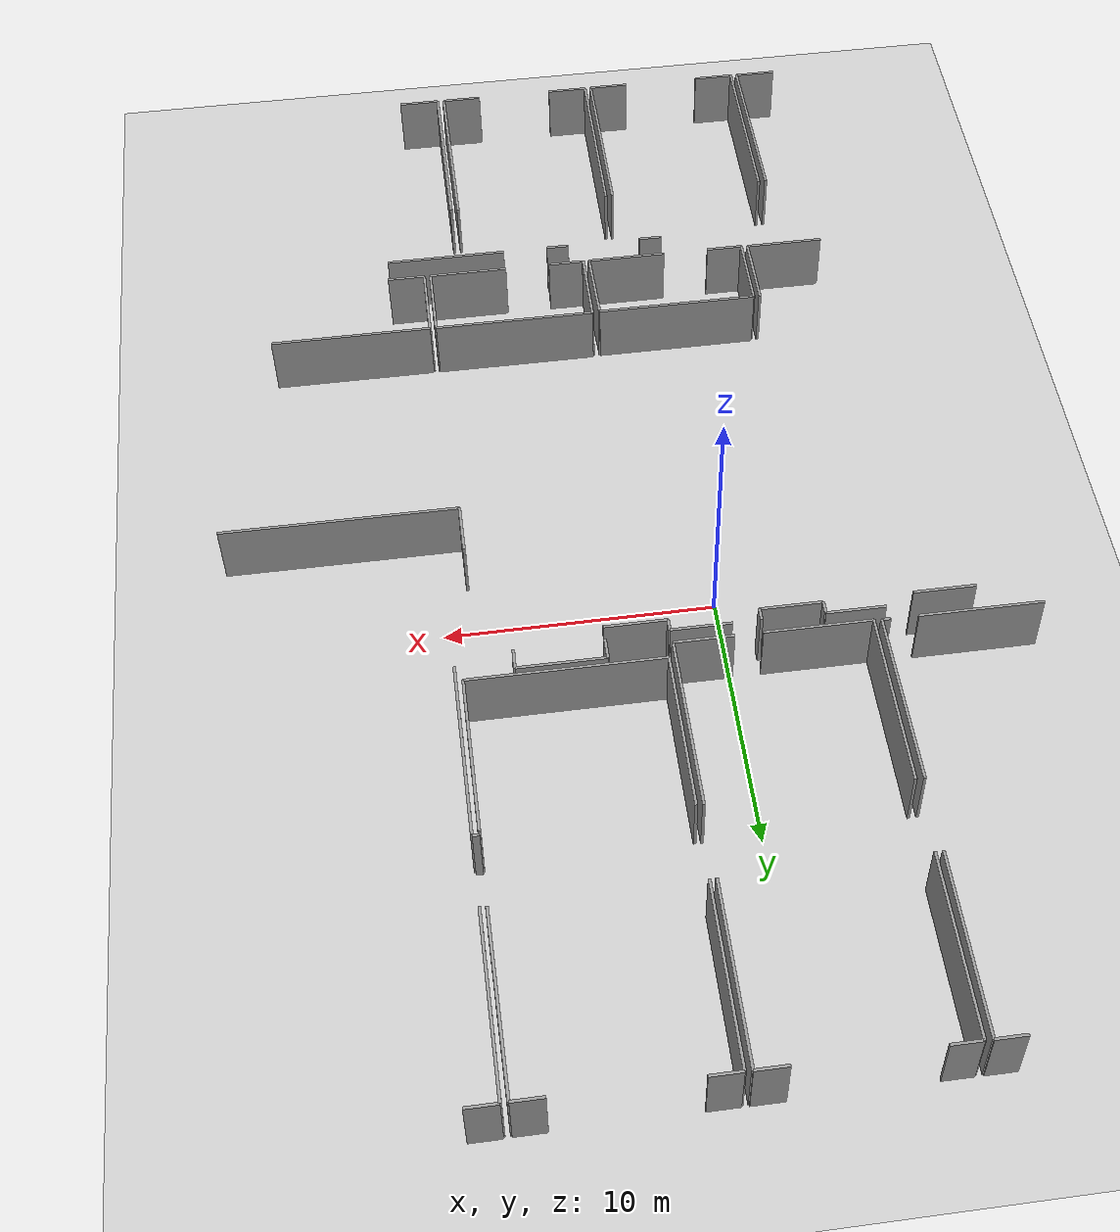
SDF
<sdf version="1.6">
 <world name="default">
  <model name="ground_plane">
   <static>1</static>
   <link name="link">
    <collision name="collision">
     <geometry><plane><normal>0 0 1</normal><size>100 100</size></plane></geometry>
     <surface><friction><ode><mu>100</mu><mu2>50</mu2></ode></friction></surface>
    </collision>
    <visual name="visual">
     <cast_shadows>0</cast_shadows>
     <geometry><plane><normal>0 0 1</normal><size>100 100</size></plane></geometry>
     <material>
      <script><uri>file://media/materials/scripts/gazebo.material</uri><name>Gazebo/Grey</name></script>
     </material>
    </visual>
   </link>
  </model>
  <model name="50045233">
   <static>1</static>
   <link name="Wall_22">
    <collision name="Wall_22_Collision">
     <geometry><box><size>0.252276260271 0.1 2.5</size></box></geometry>
     <pose>0.126138130135 0 1.25 0 0 0</pose>
    </collision>
    <visual name="Wall_22_Visual">
     <pose>0.126138130135 0 1.25 0 0 0</pose>
     <geometry><box><size>0.252276260271 0.1 2.5</size></box></geometry>
     <material>
      <script><uri>file://media/materials/scripts/gazebo.material</uri><name>Gazebo/Grey</name></script>
      <ambient>1 1 1 1</ambient>
     </material>
    </visual>
    <pose>56.4897052758 -9.31607499762 0 0 0 3.14159265359</pose>
   </link>
   <link name="Wall_23">
    <collision name="Wall_23_Collision">
     <geometry><box><size>0.0649725579772 0.1 2.5</size></box></geometry>
     <pose>0.0324862789886 0 1.25 0 0 0</pose>
    </collision>
    <visual name="Wall_23_Visual">
     <pose>0.0324862789886 0 1.25 0 0 0</pose>
     <geometry><box><size>0.0649725579772 0.1 2.5</size></box></geometry>
     <material>
      <script><uri>file://media/materials/scripts/gazebo.material</uri><name>Gazebo/Grey</name></script>
      <ambient>1 1 1 1</ambient>
     </material>
    </visual>
    <pose>56.2374290156 -9.31607499762 0 0 0 -1.57079632679</pose>
   </link>
   <link name="Wall_42">
    <collision name="Wall_42_Collision">
     <geometry><box><size>1.11735033787 0.1 2.5</size></box></geometry>
     <pose>0.558675168935 0 1.25 0 0 0</pose>
    </collision>
    <visual name="Wall_42_Visual">
     <pose>0.558675168935 0 1.25 0 0 0</pose>
     <geometry><box><size>1.11735033787 0.1 2.5</size></box></geometry>
     <material>
      <script><uri>file://media/materials/scripts/gazebo.material</uri><name>Gazebo/Grey</name></script>
      <ambient>1 1 1 1</ambient>
     </material>
    </visual>
    <pose>40.2318454364 -0.0157355413851 0 0 0 0.0</pose>
   </link>
   <link name="Wall_43">
    <collision name="Wall_43_Collision">
     <geometry><box><size>6.6601948343 0.1 2.5</size></box></geometry>
     <pose>3.33009741715 0 1.25 0 0 0</pose>
    </collision>
    <visual name="Wall_43_Visual">
     <pose>3.33009741715 0 1.25 0 0 0</pose>
     <geometry><box><size>6.6601948343 0.1 2.5</size></box></geometry>
     <material>
      <script><uri>file://media/materials/scripts/gazebo.material</uri><name>Gazebo/Grey</name></script>
      <ambient>1 1 1 1</ambient>
     </material>
    </visual>
    <pose>41.3491957742 -0.0157355413851 0 0 0 -1.57091064735</pose>
   </link>
   <link name="Wall_44">
    <collision name="Wall_44_Collision">
     <geometry><box><size>6.65461121157 0.1 2.5</size></box></geometry>
     <pose>3.32730560579 0 1.25 0 0 0</pose>
    </collision>
    <visual name="Wall_44_Visual">
     <pose>3.32730560579 0 1.25 0 0 0</pose>
     <geometry><box><size>6.65461121157 0.1 2.5</size></box></geometry>
     <material>
      <script><uri>file://media/materials/scripts/gazebo.material</uri><name>Gazebo/Grey</name></script>
      <ambient>1 1 1 1</ambient>
     </material>
    </visual>
    <pose>41.6330700168 -6.67618413121 0 0 0 1.57079632679</pose>
   </link>
   <link name="Wall_45">
    <collision name="Wall_45_Collision">
     <geometry><box><size>1.10275689223 0.1 2.5</size></box></geometry>
     <pose>0.551378446115 0 1.25 0 0 0</pose>
    </collision>
    <visual name="Wall_45_Visual">
     <pose>0.551378446115 0 1.25 0 0 0</pose>
     <geometry><box><size>1.10275689223 0.1 2.5</size></box></geometry>
     <material>
      <script><uri>file://media/materials/scripts/gazebo.material</uri><name>Gazebo/Grey</name></script>
      <ambient>1 1 1 1</ambient>
     </material>
    </visual>
    <pose>41.6330700168 -0.0215729196409 0 0 0 0.0</pose>
   </link>
   <link name="Wall_46">
    <collision name="Wall_46_Collision">
     <geometry><box><size>1.16316106723 0.1 2.5</size></box></geometry>
     <pose>0.581580533613 0 1.25 0 0 0</pose>
    </collision>
    <visual name="Wall_46_Visual">
     <pose>0.581580533613 0 1.25 0 0 0</pose>
     <geometry><box><size>1.16316106723 0.1 2.5</size></box></geometry>
     <material>
      <script><uri>file://media/materials/scripts/gazebo.material</uri><name>Gazebo/Grey</name></script>
      <ambient>1 1 1 1</ambient>
     </material>
    </visual>
    <pose>47.6459503188 -0.0215729196409 0 0 0 0.0</pose>
   </link>
   <link name="Wall_47">
    <collision name="Wall_47_Collision">
     <geometry><box><size>6.6546139993 0.1 2.5</size></box></geometry>
     <pose>3.32730699965 0 1.25 0 0 0</pose>
    </collision>
    <visual name="Wall_47_Visual">
     <pose>3.32730699965 0 1.25 0 0 0</pose>
     <geometry><box><size>6.6546139993 0.1 2.5</size></box></geometry>
     <material>
      <script><uri>file://media/materials/scripts/gazebo.material</uri><name>Gazebo/Grey</name></script>
      <ambient>1 1 1 1</ambient>
     </material>
    </visual>
    <pose>48.8091113861 -0.0215729196409 0 0 0 -1.56988099524</pose>
   </link>
   <link name="Wall_48">
    <collision name="Wall_48_Collision">
     <geometry><box><size>6.63468798579 0.1 2.5</size></box></geometry>
     <pose>3.31734399289 0 1.25 0 0 0</pose>
    </collision>
    <visual name="Wall_48_Visual">
     <pose>3.31734399289 0 1.25 0 0 0</pose>
     <geometry><box><size>6.63468798579 0.1 2.5</size></box></geometry>
     <material>
      <script><uri>file://media/materials/scripts/gazebo.material</uri><name>Gazebo/Grey</name></script>
      <ambient>1 1 1 1</ambient>
     </material>
    </visual>
    <pose>49.0613876463 -6.6617175851 0 0 0 1.57079632679</pose>
   </link>
   <link name="Wall_49">
    <collision name="Wall_49_Collision">
     <geometry><box><size>1.13016719013 0.1 2.5</size></box></geometry>
     <pose>0.565083595064 0 1.25 0 0 0</pose>
    </collision>
    <visual name="Wall_49_Visual">
     <pose>0.565083595064 0 1.25 0 0 0</pose>
     <geometry><box><size>1.13016719013 0.1 2.5</size></box></geometry>
     <material>
      <script><uri>file://media/materials/scripts/gazebo.material</uri><name>Gazebo/Grey</name></script>
      <ambient>1 1 1 1</ambient>
     </material>
    </visual>
    <pose>49.0613876463 -0.0270295993147 0 0 0 0.0</pose>
   </link>
   <link name="Wall_50">
    <collision name="Wall_50_Collision">
     <geometry><box><size>1.13016719013 0.1 2.5</size></box></geometry>
     <pose>0.565083595064 0 1.25 0 0 0</pose>
    </collision>
    <visual name="Wall_50_Visual">
     <pose>0.565083595064 0 1.25 0 0 0</pose>
     <geometry><box><size>1.13016719013 0.1 2.5</size></box></geometry>
     <material>
      <script><uri>file://media/materials/scripts/gazebo.material</uri><name>Gazebo/Grey</name></script>
      <ambient>1 1 1 1</ambient>
     </material>
    </visual>
    <pose>55.1018051458 -0.0270295993147 0 0 0 0.0</pose>
   </link>
   <link name="Wall_51">
    <collision name="Wall_51_Collision">
     <geometry><box><size>6.63471828161 0.1 2.5</size></box></geometry>
     <pose>3.3173591408 0 1.25 0 0 0</pose>
    </collision>
    <visual name="Wall_51_Visual">
     <pose>3.3173591408 0 1.25 0 0 0</pose>
     <geometry><box><size>6.63471828161 0.1 2.5</size></box></geometry>
     <material>
      <script><uri>file://media/materials/scripts/gazebo.material</uri><name>Gazebo/Grey</name></script>
      <ambient>1 1 1 1</ambient>
     </material>
    </visual>
    <pose>56.2319723359 -0.0270295993147 0 0 0 -1.56777432119</pose>
   </link>
   <link name="Wall_54">
    <collision name="Wall_54_Collision">
     <geometry><box><size>1.13181688398 0.1 2.5</size></box></geometry>
     <pose>0.565908441991 0 1.25 0 0 0</pose>
    </collision>
    <visual name="Wall_54_Visual">
     <pose>0.565908441991 0 1.25 0 0 0</pose>
     <geometry><box><size>1.13181688398 0.1 2.5</size></box></geometry>
     <material>
      <script><uri>file://media/materials/scripts/gazebo.material</uri><name>Gazebo/Grey</name></script>
      <ambient>1 1 1 1</ambient>
     </material>
    </visual>
    <pose>57.6232987532 -0.0114209574569 0 0 0 3.14159265359</pose>
   </link>
   <link name="Wall_55">
    <collision name="Wall_55_Collision">
     <geometry><box><size>6.67275794172 0.1 2.5</size></box></geometry>
     <pose>3.33637897086 0 1.25 0 0 0</pose>
    </collision>
    <visual name="Wall_55_Visual">
     <pose>3.33637897086 0 1.25 0 0 0</pose>
     <geometry><box><size>6.67275794172 0.1 2.5</size></box></geometry>
     <material>
      <script><uri>file://media/materials/scripts/gazebo.material</uri><name>Gazebo/Grey</name></script>
      <ambient>1 1 1 1</ambient>
     </material>
    </visual>
    <pose>56.4914818692 -0.0114209574569 0 0 0 -1.57062516882</pose>
   </link>
   <link name="Wall_88">
    <collision name="Wall_88_Collision">
     <geometry><box><size>6.73278132039 0.1 2.5</size></box></geometry>
     <pose>3.36639066019 0 1.25 0 0 0</pose>
    </collision>
    <visual name="Wall_88_Visual">
     <pose>3.36639066019 0 1.25 0 0 0</pose>
     <geometry><box><size>6.73278132039 0.1 2.5</size></box></geometry>
     <material>
      <script><uri>file://media/materials/scripts/gazebo.material</uri><name>Gazebo/Grey</name></script>
      <ambient>1 1 1 1</ambient>
     </material>
    </visual>
    <pose>56.492623965 -16.1128136798 0 0 0 1.57079632679</pose>
   </link>
   <link name="Wall_90">
    <collision name="Wall_90_Collision">
     <geometry><box><size>7.19241140827 0.1 2.5</size></box></geometry>
     <pose>3.59620570413 0 1.25 0 0 0</pose>
    </collision>
    <visual name="Wall_90_Visual">
     <pose>3.59620570413 0 1.25 0 0 0</pose>
     <geometry><box><size>7.19241140827 0.1 2.5</size></box></geometry>
     <material>
      <script><uri>file://media/materials/scripts/gazebo.material</uri><name>Gazebo/Grey</name></script>
      <ambient>1 1 1 1</ambient>
     </material>
    </visual>
    <pose>56.2338758288 -15.5120713175 0 0 0 3.14159265359</pose>
   </link>
   <link name="Wall_91">
    <collision name="Wall_91_Collision">
     <geometry><box><size>6.04866596872 0.1 2.5</size></box></geometry>
     <pose>3.02433298436 0 1.25 0 0 0</pose>
    </collision>
    <visual name="Wall_91_Visual">
     <pose>3.02433298436 0 1.25 0 0 0</pose>
     <geometry><box><size>6.04866596872 0.1 2.5</size></box></geometry>
     <material>
      <script><uri>file://media/materials/scripts/gazebo.material</uri><name>Gazebo/Grey</name></script>
      <ambient>1 1 1 1</ambient>
     </material>
    </visual>
    <pose>49.0414644205 -15.5120713175 0 0 0 1.57079632679</pose>
   </link>
   <link name="Wall_92">
    <collision name="Wall_92_Collision">
     <geometry><box><size>6.04866619369 0.1 2.5</size></box></geometry>
     <pose>3.02433309684 0 1.25 0 0 0</pose>
    </collision>
    <visual name="Wall_92_Visual">
     <pose>3.02433309684 0 1.25 0 0 0</pose>
     <geometry><box><size>6.04866619369 0.1 2.5</size></box></geometry>
     <material>
      <script><uri>file://media/materials/scripts/gazebo.material</uri><name>Gazebo/Grey</name></script>
      <ambient>1 1 1 1</ambient>
     </material>
    </visual>
    <pose>56.232226135 -9.46340534882 0 0 0 -1.57052358999</pose>
   </link>
   <link name="Wall_93">
    <collision name="Wall_93_Collision">
     <geometry><box><size>2.19447352559 0.1 2.5</size></box></geometry>
     <pose>1.09723676279 0 1.25 0 0 0</pose>
    </collision>
    <visual name="Wall_93_Visual">
     <pose>1.09723676279 0 1.25 0 0 0</pose>
     <geometry><box><size>2.19447352559 0.1 2.5</size></box></geometry>
     <material>
      <script><uri>file://media/materials/scripts/gazebo.material</uri><name>Gazebo/Grey</name></script>
      <ambient>1 1 1 1</ambient>
     </material>
    </visual>
    <pose>48.8099996828 -16.1194124552 0 0 0 3.14159265359</pose>
   </link>
   <link name="Wall_94">
    <collision name="Wall_94_Collision">
     <geometry><box><size>3.9586307541 0.1 2.5</size></box></geometry>
     <pose>1.97931537705 0 1.25 0 0 0</pose>
    </collision>
    <visual name="Wall_94_Visual">
     <pose>1.97931537705 0 1.25 0 0 0</pose>
     <geometry><box><size>3.9586307541 0.1 2.5</size></box></geometry>
     <material>
      <script><uri>file://media/materials/scripts/gazebo.material</uri><name>Gazebo/Grey</name></script>
      <ambient>1 1 1 1</ambient>
     </material>
    </visual>
    <pose>45.6003299388 -16.1194124552 0 0 0 3.14159265359</pose>
   </link>
   <link name="Wall_95">
    <collision name="Wall_95_Collision">
     <geometry><box><size>6.66235208274 0.1 2.5</size></box></geometry>
     <pose>3.33117604137 0 1.25 0 0 0</pose>
    </collision>
    <visual name="Wall_95_Visual">
     <pose>3.33117604137 0 1.25 0 0 0</pose>
     <geometry><box><size>6.66235208274 0.1 2.5</size></box></geometry>
     <material>
      <script><uri>file://media/materials/scripts/gazebo.material</uri><name>Gazebo/Grey</name></script>
      <ambient>1 1 1 1</ambient>
     </material>
    </visual>
    <pose>41.6416991847 -16.1194124552 0 0 0 1.57079632679</pose>
   </link>
   <link name="Wall_96">
    <collision name="Wall_96_Collision">
     <geometry><box><size>6.66238825315 0.1 2.5</size></box></geometry>
     <pose>3.33119412658 0 1.25 0 0 0</pose>
    </collision>
    <visual name="Wall_96_Visual">
     <pose>3.33119412658 0 1.25 0 0 0</pose>
     <geometry><box><size>6.66238825315 0.1 2.5</size></box></geometry>
     <material>
      <script><uri>file://media/materials/scripts/gazebo.material</uri><name>Gazebo/Grey</name></script>
      <ambient>1 1 1 1</ambient>
     </material>
    </visual>
    <pose>48.7880460645 -9.45706037245 0 0 0 -1.56750116339</pose>
   </link>
   <link name="Wall_97">
    <collision name="Wall_97_Collision">
     <geometry><box><size>0.321690301704 0.1 2.5</size></box></geometry>
     <pose>0.160845150852 0 1.25 0 0 0</pose>
    </collision>
    <visual name="Wall_97_Visual">
     <pose>0.160845150852 0 1.25 0 0 0</pose>
     <geometry><box><size>0.321690301704 0.1 2.5</size></box></geometry>
     <material>
      <script><uri>file://media/materials/scripts/gazebo.material</uri><name>Gazebo/Grey</name></script>
      <ambient>1 1 1 1</ambient>
     </material>
    </visual>
    <pose>41.3568097459 -16.0960629422 0 0 0 3.14159265359</pose>
   </link>
   <link name="Wall_98">
    <collision name="Wall_98_Collision">
     <geometry><box><size>4.57003267663 0.1 2.5</size></box></geometry>
     <pose>2.28501633831 0 1.25 0 0 0</pose>
    </collision>
    <visual name="Wall_98_Visual">
     <pose>2.28501633831 0 1.25 0 0 0</pose>
     <geometry><box><size>4.57003267663 0.1 2.5</size></box></geometry>
     <material>
      <script><uri>file://media/materials/scripts/gazebo.material</uri><name>Gazebo/Grey</name></script>
      <ambient>1 1 1 1</ambient>
     </material>
    </visual>
    <pose>40.0256337045 -16.0960629422 0 0 0 3.14159265359</pose>
   </link>
   <link name="Wall_101">
    <collision name="Wall_101_Collision">
     <geometry><box><size>6.63969105679 0.1 2.5</size></box></geometry>
     <pose>3.3198455284 0 1.25 0 0 0</pose>
    </collision>
    <visual name="Wall_101_Visual">
     <pose>3.3198455284 0 1.25 0 0 0</pose>
     <geometry><box><size>6.63969105679 0.1 2.5</size></box></geometry>
     <material>
      <script><uri>file://media/materials/scripts/gazebo.material</uri><name>Gazebo/Grey</name></script>
      <ambient>1 1 1 1</ambient>
     </material>
    </visual>
    <pose>41.3300339456 -9.45642587481 0 0 0 -1.56676362819</pose>
   </link>
   <link name="Wall_239">
    <collision name="Wall_239_Collision">
     <geometry><box><size>0.921163668665 0.1 2.5</size></box></geometry>
     <pose>0.460581834333 0 1.25 0 0 0</pose>
    </collision>
    <visual name="Wall_239_Visual">
     <pose>0.460581834333 0 1.25 0 0 0</pose>
     <geometry><box><size>0.921163668665 0.1 2.5</size></box></geometry>
     <material>
      <script><uri>file://media/materials/scripts/gazebo.material</uri><name>Gazebo/Grey</name></script>
      <ambient>1 1 1 1</ambient>
     </material>
    </visual>
    <pose>46.187113353 -36.5489673551 0 0 0 0.0</pose>
   </link>
   <link name="Wall_240">
    <collision name="Wall_240_Collision">
     <geometry><box><size>0.890200184004 0.1 2.5</size></box></geometry>
     <pose>0.445100092002 0 1.25 0 0 0</pose>
    </collision>
    <visual name="Wall_240_Visual">
     <pose>0.445100092002 0 1.25 0 0 0</pose>
     <geometry><box><size>0.890200184004 0.1 2.5</size></box></geometry>
     <material>
      <script><uri>file://media/materials/scripts/gazebo.material</uri><name>Gazebo/Grey</name></script>
      <ambient>1 1 1 1</ambient>
     </material>
    </visual>
    <pose>50.0541226484 -36.5489673551 0 0 0 0.0</pose>
   </link>
   <link name="Wall_241">
    <collision name="Wall_241_Collision">
     <geometry><box><size>4.73094127724 0.1 2.5</size></box></geometry>
     <pose>2.36547063862 0 1.25 0 0 0</pose>
    </collision>
    <visual name="Wall_241_Visual">
     <pose>2.36547063862 0 1.25 0 0 0</pose>
     <geometry><box><size>4.73094127724 0.1 2.5</size></box></geometry>
     <material>
      <script><uri>file://media/materials/scripts/gazebo.material</uri><name>Gazebo/Grey</name></script>
      <ambient>1 1 1 1</ambient>
     </material>
    </visual>
    <pose>52.7211700136 -36.5489673551 0 0 0 0.0</pose>
   </link>
   <link name="Wall_253">
    <collision name="Wall_253_Collision">
     <geometry><box><size>1.63446591161 0.1 2.5</size></box></geometry>
     <pose>0.817232955807 0 1.25 0 0 0</pose>
    </collision>
    <visual name="Wall_253_Visual">
     <pose>0.817232955807 0 1.25 0 0 0</pose>
     <geometry><box><size>1.63446591161 0.1 2.5</size></box></geometry>
     <material>
      <script><uri>file://media/materials/scripts/gazebo.material</uri><name>Gazebo/Grey</name></script>
      <ambient>1 1 1 1</ambient>
     </material>
    </visual>
    <pose>41.3729259859 -46.3877415057 0 0 0 3.14159265359</pose>
   </link>
   <link name="Wall_256">
    <collision name="Wall_256_Collision">
     <geometry><box><size>7.04663422733 0.1 2.5</size></box></geometry>
     <pose>3.52331711366 0 1.25 0 0 0</pose>
    </collision>
    <visual name="Wall_256_Visual">
     <pose>3.52331711366 0 1.25 0 0 0</pose>
     <geometry><box><size>7.04663422733 0.1 2.5</size></box></geometry>
     <material>
      <script><uri>file://media/materials/scripts/gazebo.material</uri><name>Gazebo/Grey</name></script>
      <ambient>1 1 1 1</ambient>
     </material>
    </visual>
    <pose>41.3258462612 -39.3412645538 0 0 0 -1.56411511228</pose>
   </link>
   <link name="Wall_257">
    <collision name="Wall_257_Collision">
     <geometry><box><size>1.58066051204 0.1 2.5</size></box></geometry>
     <pose>0.79033025602 0 1.25 0 0 0</pose>
    </collision>
    <visual name="Wall_257_Visual">
     <pose>0.79033025602 0 1.25 0 0 0</pose>
     <geometry><box><size>1.58066051204 0.1 2.5</size></box></geometry>
     <material>
      <script><uri>file://media/materials/scripts/gazebo.material</uri><name>Gazebo/Grey</name></script>
      <ambient>1 1 1 1</ambient>
     </material>
    </visual>
    <pose>47.8828717363 -46.4004314584 0 0 0 3.14159265359</pose>
   </link>
   <link name="Wall_258">
    <collision name="Wall_258_Collision">
     <geometry><box><size>1.58865518226 0.1 2.5</size></box></geometry>
     <pose>0.79432759113 0 1.25 0 0 0</pose>
    </collision>
    <visual name="Wall_258_Visual">
     <pose>0.79432759113 0 1.25 0 0 0</pose>
     <geometry><box><size>1.58865518226 0.1 2.5</size></box></geometry>
     <material>
      <script><uri>file://media/materials/scripts/gazebo.material</uri><name>Gazebo/Grey</name></script>
      <ambient>1 1 1 1</ambient>
     </material>
    </visual>
    <pose>43.2160147203 -46.4004314584 0 0 0 3.14159265359</pose>
   </link>
   <link name="Wall_259">
    <collision name="Wall_259_Collision">
     <geometry><box><size>7.06957266584 0.1 2.5</size></box></geometry>
     <pose>3.53478633292 0 1.25 0 0 0</pose>
    </collision>
    <visual name="Wall_259_Visual">
     <pose>3.53478633292 0 1.25 0 0 0</pose>
     <geometry><box><size>7.06957266584 0.1 2.5</size></box></geometry>
     <material>
      <script><uri>file://media/materials/scripts/gazebo.material</uri><name>Gazebo/Grey</name></script>
      <ambient>1 1 1 1</ambient>
     </material>
    </visual>
    <pose>41.6273595381 -46.4004314584 0 0 0 1.57079632679</pose>
   </link>
   <link name="Wall_260">
    <collision name="Wall_260_Collision">
     <geometry><box><size>7.06960997821 0.1 2.5</size></box></geometry>
     <pose>3.53480498911 0 1.25 0 0 0</pose>
    </collision>
    <visual name="Wall_260_Visual">
     <pose>3.53480498911 0 1.25 0 0 0</pose>
     <geometry><box><size>7.06960997821 0.1 2.5</size></box></geometry>
     <material>
      <script><uri>file://media/materials/scripts/gazebo.material</uri><name>Gazebo/Grey</name></script>
      <ambient>1 1 1 1</ambient>
     </material>
    </visual>
    <pose>47.8599029219 -39.3308587926 0 0 0 -1.56754737036</pose>
   </link>
   <link name="Wall_261">
    <collision name="Wall_261_Collision">
     <geometry><box><size>1.56403667396 0.1 2.5</size></box></geometry>
     <pose>0.782018336982 0 1.25 0 0 0</pose>
    </collision>
    <visual name="Wall_261_Visual">
     <pose>0.782018336982 0 1.25 0 0 0</pose>
     <geometry><box><size>1.56403667396 0.1 2.5</size></box></geometry>
     <material>
      <script><uri>file://media/materials/scripts/gazebo.material</uri><name>Gazebo/Grey</name></script>
      <ambient>1 1 1 1</ambient>
     </material>
    </visual>
    <pose>54.3623616002 -46.393832683 0 0 0 3.14159265359</pose>
   </link>
   <link name="Wall_262">
    <collision name="Wall_262_Collision">
     <geometry><box><size>1.60350242695 0.1 2.5</size></box></geometry>
     <pose>0.801751213477 0 1.25 0 0 0</pose>
    </collision>
    <visual name="Wall_262_Visual">
     <pose>0.801751213477 0 1.25 0 0 0</pose>
     <geometry><box><size>1.60350242695 0.1 2.5</size></box></geometry>
     <material>
      <script><uri>file://media/materials/scripts/gazebo.material</uri><name>Gazebo/Grey</name></script>
      <ambient>1 1 1 1</ambient>
     </material>
    </visual>
    <pose>49.7366200311 -46.393832683 0 0 0 3.14159265359</pose>
   </link>
   <link name="Wall_263">
    <collision name="Wall_263_Collision">
     <geometry><box><size>7.06779607246 0.1 2.5</size></box></geometry>
     <pose>3.53389803623 0 1.25 0 0 0</pose>
    </collision>
    <visual name="Wall_263_Visual">
     <pose>3.53389803623 0 1.25 0 0 0</pose>
     <geometry><box><size>7.06779607246 0.1 2.5</size></box></geometry>
     <material>
      <script><uri>file://media/materials/scripts/gazebo.material</uri><name>Gazebo/Grey</name></script>
      <ambient>1 1 1 1</ambient>
     </material>
    </visual>
    <pose>48.1331176041 -46.393832683 0 0 0 1.57079632679</pose>
   </link>
   <link name="Wall_264">
    <collision name="Wall_264_Collision">
     <geometry><box><size>7.06781562252 0.1 2.5</size></box></geometry>
     <pose>3.53390781126 0 1.25 0 0 0</pose>
    </collision>
    <visual name="Wall_264_Visual">
     <pose>3.53390781126 0 1.25 0 0 0</pose>
     <geometry><box><size>7.06781562252 0.1 2.5</size></box></geometry>
     <material>
      <script><uri>file://media/materials/scripts/gazebo.material</uri><name>Gazebo/Grey</name></script>
      <ambient>1 1 1 1</ambient>
     </material>
    </visual>
    <pose>54.3457377621 -39.3260366105 0 0 0 -1.56844427712</pose>
   </link>
   <link name="Wall_266">
    <collision name="Wall_266_Collision">
     <geometry><box><size>1.62710573903 0.1 2.5</size></box></geometry>
     <pose>0.813552869516 0 1.25 0 0 0</pose>
    </collision>
    <visual name="Wall_266_Visual">
     <pose>0.813552869516 0 1.25 0 0 0</pose>
     <geometry><box><size>1.62710573903 0.1 2.5</size></box></geometry>
     <material>
      <script><uri>file://media/materials/scripts/gazebo.material</uri><name>Gazebo/Grey</name></script>
      <ambient>1 1 1 1</ambient>
     </material>
    </visual>
    <pose>56.2590019352 -46.4015735541 0 0 0 3.14159265359</pose>
   </link>
   <link name="Wall_267">
    <collision name="Wall_267_Collision">
     <geometry><box><size>7.0795977285 0.1 2.5</size></box></geometry>
     <pose>3.53979886425 0 1.25 0 0 0</pose>
    </collision>
    <visual name="Wall_267_Visual">
     <pose>3.53979886425 0 1.25 0 0 0</pose>
     <geometry><box><size>7.0795977285 0.1 2.5</size></box></geometry>
     <material>
      <script><uri>file://media/materials/scripts/gazebo.material</uri><name>Gazebo/Grey</name></script>
      <ambient>1 1 1 1</ambient>
     </material>
    </visual>
    <pose>54.6318961962 -46.4015735541 0 0 0 1.57079632679</pose>
   </link>
   <link name="Wall_314">
    <collision name="Wall_314_Collision">
     <geometry><box><size>1.94486215539 0.1 2.5</size></box></geometry>
     <pose>0.972431077694 0 1.25 0 0 0</pose>
    </collision>
    <visual name="Wall_314_Visual">
     <pose>0.972431077694 0 1.25 0 0 0</pose>
     <geometry><box><size>1.94486215539 0.1 2.5</size></box></geometry>
     <material>
      <script><uri>file://media/materials/scripts/gazebo.material</uri><name>Gazebo/Grey</name></script>
      <ambient>1 1 1 1</ambient>
     </material>
    </visual>
    <pose>55.6918879477 -21.2825735224 0 0 0 -1.57079632679</pose>
   </link>
   <link name="Wall_315">
    <collision name="Wall_315_Collision">
     <geometry><box><size>8.86012499603 0.1 2.5</size></box></geometry>
     <pose>4.43006249802 0 1.25 0 0 0</pose>
    </collision>
    <visual name="Wall_315_Visual">
     <pose>4.43006249802 0 1.25 0 0 0</pose>
     <geometry><box><size>8.86012499603 0.1 2.5</size></box></geometry>
     <material>
      <script><uri>file://media/materials/scripts/gazebo.material</uri><name>Gazebo/Grey</name></script>
      <ambient>1 1 1 1</ambient>
     </material>
    </visual>
    <pose>55.6918879477 -23.2274356778 0 0 0 0.0</pose>
   </link>
   <link name="Wall_338">
    <collision name="Wall_338_Collision">
     <geometry><box><size>2.31452047841 0.1 2.5</size></box></geometry>
     <pose>1.15726023921 0 1.25 0 0 0</pose>
    </collision>
    <visual name="Wall_338_Visual">
     <pose>1.15726023921 0 1.25 0 0 0</pose>
     <geometry><box><size>2.31452047841 0.1 2.5</size></box></geometry>
     <material>
      <script><uri>file://media/materials/scripts/gazebo.material</uri><name>Gazebo/Grey</name></script>
      <ambient>1 1 1 1</ambient>
     </material>
    </visual>
    <pose>51.1514228609 -17.1182386346 0 0 0 3.14159265359</pose>
   </link>
   <link name="Wall_339">
    <collision name="Wall_339_Collision">
     <geometry><box><size>0.451127819549 0.1 2.5</size></box></geometry>
     <pose>0.225563909774 0 1.25 0 0 0</pose>
    </collision>
    <visual name="Wall_339_Visual">
     <pose>0.225563909774 0 1.25 0 0 0</pose>
     <geometry><box><size>0.451127819549 0.1 2.5</size></box></geometry>
     <material>
      <script><uri>file://media/materials/scripts/gazebo.material</uri><name>Gazebo/Grey</name></script>
      <ambient>1 1 1 1</ambient>
     </material>
    </visual>
    <pose>48.8369023825 -17.1182386346 0 0 0 1.57079632679</pose>
   </link>
   <link name="Wall_340">
    <collision name="Wall_340_Collision">
     <geometry><box><size>2.22746740268 0.1 2.5</size></box></geometry>
     <pose>1.11373370134 0 1.25 0 0 0</pose>
    </collision>
    <visual name="Wall_340_Visual">
     <pose>1.11373370134 0 1.25 0 0 0</pose>
     <geometry><box><size>2.22746740268 0.1 2.5</size></box></geometry>
     <material>
      <script><uri>file://media/materials/scripts/gazebo.material</uri><name>Gazebo/Grey</name></script>
      <ambient>1 1 1 1</ambient>
     </material>
    </visual>
    <pose>48.8369023825 -16.667110815 0 0 0 3.14159265359</pose>
   </link>
   <link name="Wall_341">
    <collision name="Wall_341_Collision">
     <geometry><box><size>0.4787919165 0.1 2.5</size></box></geometry>
     <pose>0.23939595825 0 1.25 0 0 0</pose>
    </collision>
    <visual name="Wall_341_Visual">
     <pose>0.23939595825 0 1.25 0 0 0</pose>
     <geometry><box><size>0.4787919165 0.1 2.5</size></box></geometry>
     <material>
      <script><uri>file://media/materials/scripts/gazebo.material</uri><name>Gazebo/Grey</name></script>
      <ambient>1 1 1 1</ambient>
     </material>
    </visual>
    <pose>45.5574378985 -16.667110815 0 0 0 -1.57079632679</pose>
   </link>
   <link name="Wall_342">
    <collision name="Wall_342_Collision">
     <geometry><box><size>2.3000539323 0.1 2.5</size></box></geometry>
     <pose>1.15002696615 0 1.25 0 0 0</pose>
    </collision>
    <visual name="Wall_342_Visual">
     <pose>1.15002696615 0 1.25 0 0 0</pose>
     <geometry><box><size>2.3000539323 0.1 2.5</size></box></geometry>
     <material>
      <script><uri>file://media/materials/scripts/gazebo.material</uri><name>Gazebo/Grey</name></script>
      <ambient>1 1 1 1</ambient>
     </material>
    </visual>
    <pose>45.5574378985 -17.1459027315 0 0 0 3.14159265359</pose>
   </link>
   <link name="Wall_343">
    <collision name="Wall_343_Collision">
     <geometry><box><size>0.493258462612 0.1 2.5</size></box></geometry>
     <pose>0.246629231306 0 1.25 0 0 0</pose>
    </collision>
    <visual name="Wall_343_Visual">
     <pose>0.246629231306 0 1.25 0 0 0</pose>
     <geometry><box><size>0.493258462612 0.1 2.5</size></box></geometry>
     <material>
      <script><uri>file://media/materials/scripts/gazebo.material</uri><name>Gazebo/Grey</name></script>
      <ambient>1 1 1 1</ambient>
     </material>
    </visual>
    <pose>43.2573839662 -17.1459027315 0 0 0 1.57079632679</pose>
   </link>
   <link name="Wall_344">
    <collision name="Wall_344_Collision">
     <geometry><box><size>2.17975318042 0.1 2.5</size></box></geometry>
     <pose>1.08987659021 0 1.25 0 0 0</pose>
    </collision>
    <visual name="Wall_344_Visual">
     <pose>1.08987659021 0 1.25 0 0 0</pose>
     <geometry><box><size>2.17975318042 0.1 2.5</size></box></geometry>
     <material>
      <script><uri>file://media/materials/scripts/gazebo.material</uri><name>Gazebo/Grey</name></script>
      <ambient>1 1 1 1</ambient>
     </material>
    </visual>
    <pose>43.2573839662 -16.6526442689 0 0 0 3.14159265359</pose>
   </link>
   <link name="Wall_346">
    <collision name="Wall_346_Collision">
     <geometry><box><size>2.30906379874 0.1 2.5</size></box></geometry>
     <pose>1.15453189937 0 1.25 0 0 0</pose>
    </collision>
    <visual name="Wall_346_Visual">
     <pose>1.15453189937 0 1.25 0 0 0</pose>
     <geometry><box><size>2.30906379874 0.1 2.5</size></box></geometry>
     <material>
      <script><uri>file://media/materials/scripts/gazebo.material</uri><name>Gazebo/Grey</name></script>
      <ambient>1 1 1 1</ambient>
     </material>
    </visual>
    <pose>39.9923860284 -17.1352431712 0 0 0 3.14159265359</pose>
   </link>
   <link name="Wall_382">
    <collision name="Wall_382_Collision">
     <geometry><box><size>1.47038482282 0.1 2.5</size></box></geometry>
     <pose>0.735192411408 0 1.25 0 0 0</pose>
    </collision>
    <visual name="Wall_382_Visual">
     <pose>0.735192411408 0 1.25 0 0 0</pose>
     <geometry><box><size>1.47038482282 0.1 2.5</size></box></geometry>
     <material>
      <script><uri>file://media/materials/scripts/gazebo.material</uri><name>Gazebo/Grey</name></script>
      <ambient>1 1 1 1</ambient>
     </material>
    </visual>
    <pose>57.5102312744 -35.5606738365 0 0 0 3.14159265359</pose>
   </link>
   <link name="Wall_383">
    <collision name="Wall_383_Collision">
     <geometry><box><size>2.96170806764 0.1 2.5</size></box></geometry>
     <pose>1.48085403382 0 1.25 0 0 0</pose>
    </collision>
    <visual name="Wall_383_Visual">
     <pose>1.48085403382 0 1.25 0 0 0</pose>
     <geometry><box><size>2.96170806764 0.1 2.5</size></box></geometry>
     <material>
      <script><uri>file://media/materials/scripts/gazebo.material</uri><name>Gazebo/Grey</name></script>
      <ambient>1 1 1 1</ambient>
     </material>
    </visual>
    <pose>56.0398464516 -35.5606738365 0 0 0 1.57079632679</pose>
   </link>
   <link name="Wall_384">
    <collision name="Wall_384_Collision">
     <geometry><box><size>6.26173027505 0.1 2.5</size></box></geometry>
     <pose>3.13086513753 0 1.25 0 0 0</pose>
    </collision>
    <visual name="Wall_384_Visual">
     <pose>3.13086513753 0 1.25 0 0 0</pose>
     <geometry><box><size>6.26173027505 0.1 2.5</size></box></geometry>
     <material>
      <script><uri>file://media/materials/scripts/gazebo.material</uri><name>Gazebo/Grey</name></script>
      <ambient>1 1 1 1</ambient>
     </material>
    </visual>
    <pose>56.0398464516 -32.5989657689 0 0 0 0.0</pose>
   </link>
   <link name="Wall_386">
    <collision name="Wall_386_Collision">
     <geometry><box><size>3.06119729704 0.1 2.5</size></box></geometry>
     <pose>1.53059864852 0 1.25 0 0 0</pose>
    </collision>
    <visual name="Wall_386_Visual">
     <pose>1.53059864852 0 1.25 0 0 0</pose>
     <geometry><box><size>3.06119729704 0.1 2.5</size></box></geometry>
     <material>
      <script><uri>file://media/materials/scripts/gazebo.material</uri><name>Gazebo/Grey</name></script>
      <ambient>1 1 1 1</ambient>
     </material>
    </visual>
    <pose>55.7917578757 -35.5539481615 0 0 0 3.14159265359</pose>
   </link>
   <link name="Wall_387">
    <collision name="Wall_387_Collision">
     <geometry><box><size>1.41010754735 0.1 2.5</size></box></geometry>
     <pose>0.705053773675 0 1.25 0 0 0</pose>
    </collision>
    <visual name="Wall_387_Visual">
     <pose>0.705053773675 0 1.25 0 0 0</pose>
     <geometry><box><size>1.41010754735 0.1 2.5</size></box></geometry>
     <material>
      <script><uri>file://media/materials/scripts/gazebo.material</uri><name>Gazebo/Grey</name></script>
      <ambient>1 1 1 1</ambient>
     </material>
    </visual>
    <pose>50.9689413407 -35.5539481615 0 0 0 3.14159265359</pose>
   </link>
   <link name="Wall_388">
    <collision name="Wall_388_Collision">
     <geometry><box><size>2.96208876622 0.1 2.5</size></box></geometry>
     <pose>1.48104438311 0 1.25 0 0 0</pose>
    </collision>
    <visual name="Wall_388_Visual">
     <pose>1.48104438311 0 1.25 0 0 0</pose>
     <geometry><box><size>2.96208876622 0.1 2.5</size></box></geometry>
     <material>
      <script><uri>file://media/materials/scripts/gazebo.material</uri><name>Gazebo/Grey</name></script>
      <ambient>1 1 1 1</ambient>
     </material>
    </visual>
    <pose>49.5588337933 -35.5539481615 0 0 0 1.57079632679</pose>
   </link>
   <link name="Wall_389">
    <collision name="Wall_389_Collision">
     <geometry><box><size>6.24117255163 0.1 2.5</size></box></geometry>
     <pose>3.12058627582 0 1.25 0 0 0</pose>
    </collision>
    <visual name="Wall_389_Visual">
     <pose>3.12058627582 0 1.25 0 0 0</pose>
     <geometry><box><size>6.24117255163 0.1 2.5</size></box></geometry>
     <material>
      <script><uri>file://media/materials/scripts/gazebo.material</uri><name>Gazebo/Grey</name></script>
      <ambient>1 1 1 1</ambient>
     </material>
    </visual>
    <pose>49.5588337933 -32.5918593953 0 0 0 0.0</pose>
   </link>
   <link name="Wall_390">
    <collision name="Wall_390_Collision">
     <geometry><box><size>2.96210025087 0.1 2.5</size></box></geometry>
     <pose>1.48105012544 0 1.25 0 0 0</pose>
    </collision>
    <visual name="Wall_390_Visual">
     <pose>1.48105012544 0 1.25 0 0 0</pose>
     <geometry><box><size>2.96210025087 0.1 2.5</size></box></geometry>
     <material>
      <script><uri>file://media/materials/scripts/gazebo.material</uri><name>Gazebo/Grey</name></script>
      <ambient>1 1 1 1</ambient>
     </material>
    </visual>
    <pose>55.800006345 -32.5918593953 0 0 0 -1.57358099957</pose>
   </link>
   <link name="Wall_391">
    <collision name="Wall_391_Collision">
     <geometry><box><size>3.07858253228 0.1 2.5</size></box></geometry>
     <pose>1.53929126614 0 1.25 0 0 0</pose>
    </collision>
    <visual name="Wall_391_Visual">
     <pose>1.53929126614 0 1.25 0 0 0</pose>
     <geometry><box><size>3.07858253228 0.1 2.5</size></box></geometry>
     <material>
      <script><uri>file://media/materials/scripts/gazebo.material</uri><name>Gazebo/Grey</name></script>
      <ambient>1 1 1 1</ambient>
     </material>
    </visual>
    <pose>49.3189936867 -35.5543288601 0 0 0 3.14159265359</pose>
   </link>
   <link name="Wall_392">
    <collision name="Wall_392_Collision">
     <geometry><box><size>1.41251863837 0.1 2.5</size></box></geometry>
     <pose>0.706259319184 0 1.25 0 0 0</pose>
    </collision>
    <visual name="Wall_392_Visual">
     <pose>0.706259319184 0 1.25 0 0 0</pose>
     <geometry><box><size>1.41251863837 0.1 2.5</size></box></geometry>
     <material>
      <script><uri>file://media/materials/scripts/gazebo.material</uri><name>Gazebo/Grey</name></script>
      <ambient>1 1 1 1</ambient>
     </material>
    </visual>
    <pose>44.4417372545 -35.5543288601 0 0 0 3.14159265359</pose>
   </link>
   <link name="Wall_393">
    <collision name="Wall_393_Collision">
     <geometry><box><size>2.93518606643 0.1 2.5</size></box></geometry>
     <pose>1.46759303322 0 1.25 0 0 0</pose>
    </collision>
    <visual name="Wall_393_Visual">
     <pose>1.46759303322 0 1.25 0 0 0</pose>
     <geometry><box><size>2.93518606643 0.1 2.5</size></box></geometry>
     <material>
      <script><uri>file://media/materials/scripts/gazebo.material</uri><name>Gazebo/Grey</name></script>
      <ambient>1 1 1 1</ambient>
     </material>
    </visual>
    <pose>43.0292186162 -35.5543288601 0 0 0 1.57079632679</pose>
   </link>
   <link name="Wall_394">
    <collision name="Wall_394_Collision">
     <geometry><box><size>6.23470067574 0.1 2.5</size></box></geometry>
     <pose>3.11735033787 0 1.25 0 0 0</pose>
    </collision>
    <visual name="Wall_394_Visual">
     <pose>3.11735033787 0 1.25 0 0 0</pose>
     <geometry><box><size>6.23470067574 0.1 2.5</size></box></geometry>
     <material>
      <script><uri>file://media/materials/scripts/gazebo.material</uri><name>Gazebo/Grey</name></script>
      <ambient>1 1 1 1</ambient>
     </material>
    </visual>
    <pose>43.0292186162 -32.6191427937 0 0 0 0.0</pose>
   </link>
   <link name="Wall_395">
    <collision name="Wall_395_Collision">
     <geometry><box><size>2.93570271546 0.1 2.5</size></box></geometry>
     <pose>1.46785135773 0 1.25 0 0 0</pose>
    </collision>
    <visual name="Wall_395_Visual">
     <pose>1.46785135773 0 1.25 0 0 0</pose>
     <geometry><box><size>2.93570271546 0.1 2.5</size></box></geometry>
     <material>
      <script><uri>file://media/materials/scripts/gazebo.material</uri><name>Gazebo/Grey</name></script>
      <ambient>1 1 1 1</ambient>
     </material>
    </visual>
    <pose>49.2639192919 -32.6191427937 0 0 0 -1.55203501776</pose>
   </link>
   <link name="Wall_396">
    <collision name="Wall_396_Collision">
     <geometry><box><size>3.03695948733 0.1 2.5</size></box></geometry>
     <pose>1.51847974366 0 1.25 0 0 0</pose>
    </collision>
    <visual name="Wall_396_Visual">
     <pose>1.51847974366 0 1.25 0 0 0</pose>
     <geometry><box><size>3.03695948733 0.1 2.5</size></box></geometry>
     <material>
      <script><uri>file://media/materials/scripts/gazebo.material</uri><name>Gazebo/Grey</name></script>
      <ambient>1 1 1 1</ambient>
     </material>
    </visual>
    <pose>42.7754195616 -35.521334983 0 0 0 3.14159265359</pose>
   </link>
   <link name="Wall_400">
    <collision name="Wall_400_Collision">
     <geometry><box><size>2.91323244821 0.1 2.5</size></box></geometry>
     <pose>1.4566162241 0 1.25 0 0 0</pose>
    </collision>
    <visual name="Wall_400_Visual">
     <pose>1.4566162241 0 1.25 0 0 0</pose>
     <geometry><box><size>2.91323244821 0.1 2.5</size></box></geometry>
     <material>
      <script><uri>file://media/materials/scripts/gazebo.material</uri><name>Gazebo/Grey</name></script>
      <ambient>1 1 1 1</ambient>
     </material>
    </visual>
    <pose>42.7754195616 -32.6081025348 0 0 0 -1.57079632679</pose>
   </link>
   <link name="Wall_401">
    <collision name="Wall_401_Collision">
     <geometry><box><size>0.783477681546 0.1 2.5</size></box></geometry>
     <pose>0.391738840773 0 1.25 0 0 0</pose>
    </collision>
    <visual name="Wall_401_Visual">
     <pose>0.391738840773 0 1.25 0 0 0</pose>
     <geometry><box><size>0.783477681546 0.1 2.5</size></box></geometry>
     <material>
      <script><uri>file://media/materials/scripts/gazebo.material</uri><name>Gazebo/Grey</name></script>
      <ambient>1 1 1 1</ambient>
     </material>
    </visual>
    <pose>51.1514228609 -16.5654642936 0 0 0 1.57079632679</pose>
   </link>
   <link name="Wall_402">
    <collision name="Wall_402_Collision">
     <geometry><box><size>3.25776466483 0.1 2.5</size></box></geometry>
     <pose>1.62888233241 0 1.25 0 0 0</pose>
    </collision>
    <visual name="Wall_402_Visual">
     <pose>1.62888233241 0 1.25 0 0 0</pose>
     <geometry><box><size>3.25776466483 0.1 2.5</size></box></geometry>
     <material>
      <script><uri>file://media/materials/scripts/gazebo.material</uri><name>Gazebo/Grey</name></script>
      <ambient>1 1 1 1</ambient>
     </material>
    </visual>
    <pose>51.1514228609 -15.7819866121 0 0 0 0.0</pose>
   </link>
   <link name="Wall_403">
    <collision name="Wall_403_Collision">
     <geometry><box><size>0.783781655264 0.1 2.5</size></box></geometry>
     <pose>0.391890827632 0 1.25 0 0 0</pose>
    </collision>
    <visual name="Wall_403_Visual">
     <pose>0.391890827632 0 1.25 0 0 0</pose>
     <geometry><box><size>0.783781655264 0.1 2.5</size></box></geometry>
     <material>
      <script><uri>file://media/materials/scripts/gazebo.material</uri><name>Gazebo/Grey</name></script>
      <ambient>1 1 1 1</ambient>
     </material>
    </visual>
    <pose>54.4091875258 -15.7819866121 0 0 0 -1.59864788554</pose>
   </link>
   <pose>-46.75 19.2209891818 0 0 0 0</pose>
  </model>
 </world>
</sdf>
